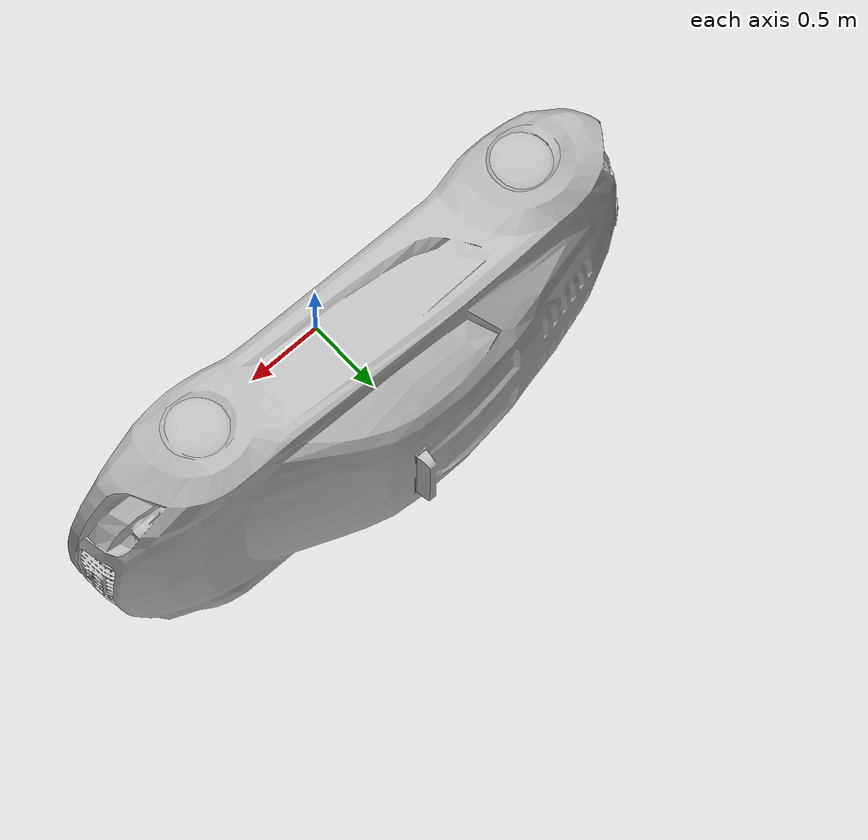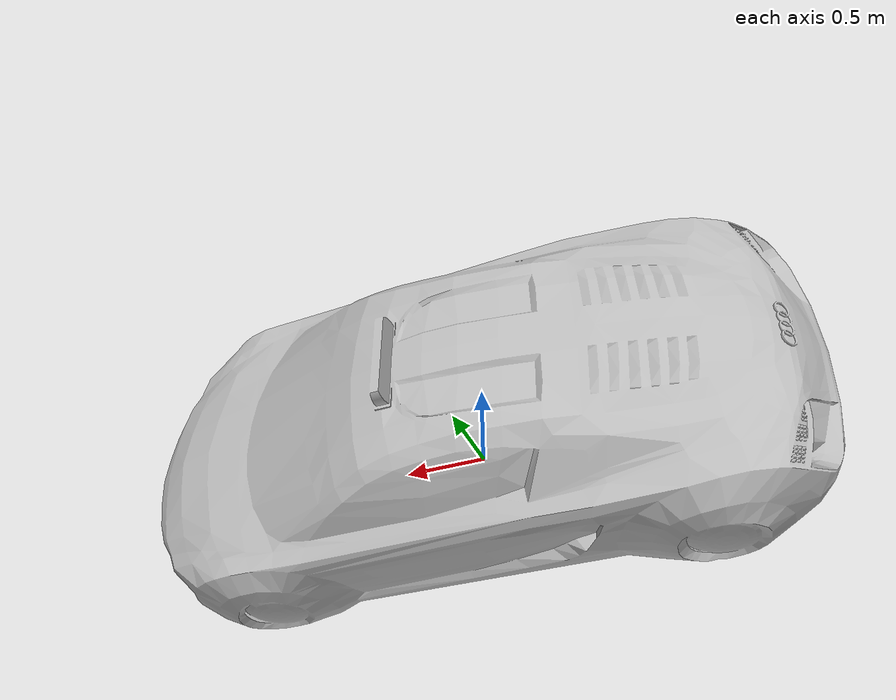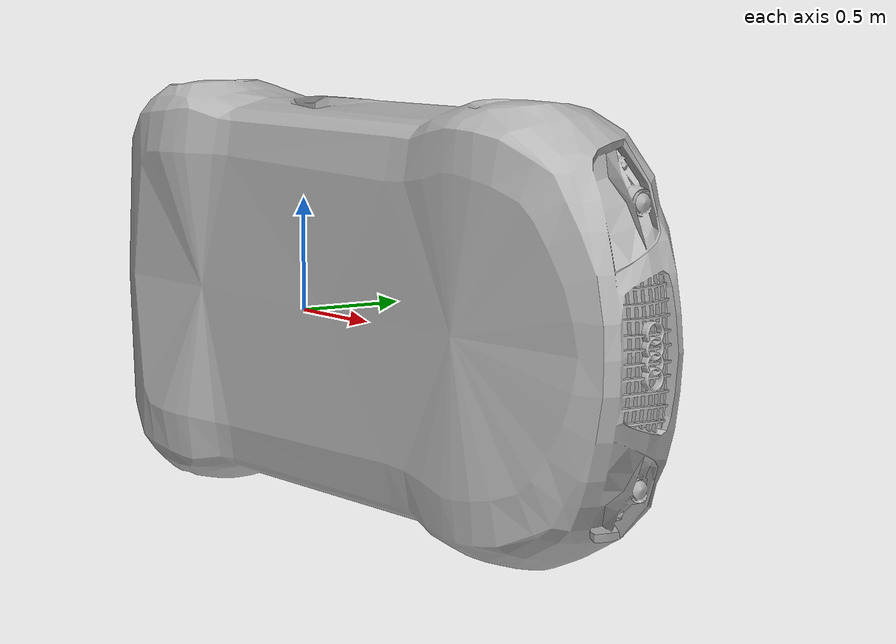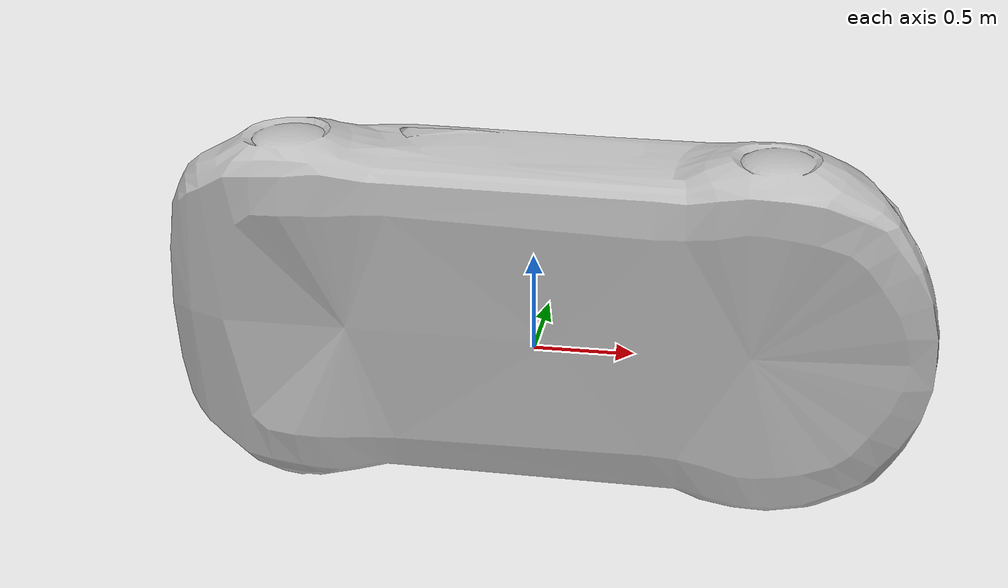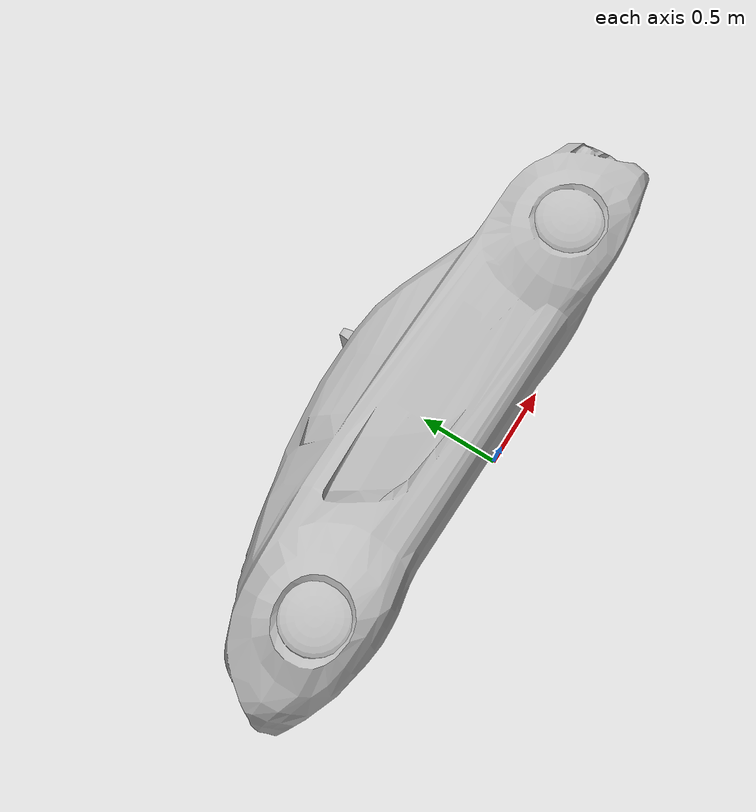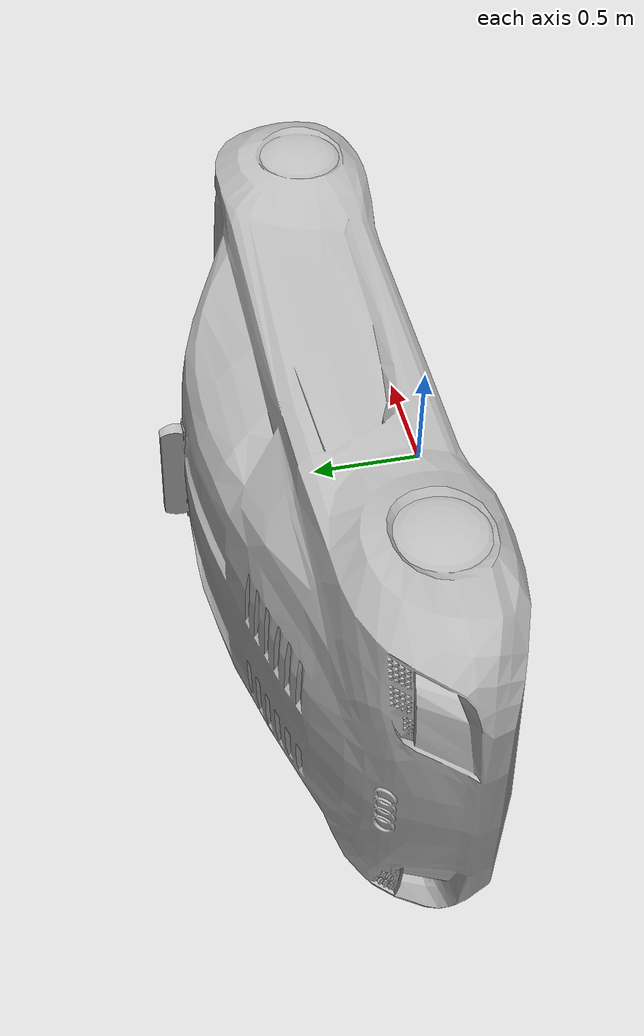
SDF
<?xml version='1.0'?>
<sdf version="1.5">
<model name="taxi_holo">
  <pose>0 0 0 0 0 0</pose>
  <static>false</static>
    <link name="taxi_holo">
      <gravity>false</gravity>
      <inertial>
        <mass>750.0</mass>
        <inertia>
          <ixx>1</ixx>
          <ixy>0.0</ixy>
          <ixz>0.0</ixz>
          <iyy>1</iyy>
          <iyz>0.0</iyz>
          <izz>1</izz>
        </inertia>
      </inertial>
      <collision name="collision">
        <geometry>
	  <mesh>
	    <uri>model://taxi_holo_ROS/meshes/taxi_holo.dae</uri>
	  </mesh>
        </geometry>
      </collision>
      <visual name="visual">
        <geometry>
          <mesh>
            <uri>model://taxi_holo_ROS/meshes/taxi_holo.dae</uri>
          </mesh>
        </geometry>
      </visual>
    </link>
    <plugin name="object_controller" filename="libgazebo_ros_planar_move.so">
      <commandTopic>taxi_holo/cmd_vel</commandTopic>
      <odometryTopic>taxi_holo/odom</odometryTopic>
      <odometryFrame>odom</odometryFrame>
      <odometryRate>20.0</odometryRate>
      <robotBaseFrame>taxi_holo</robotBaseFrame>
</plugin>
  </model>
</sdf>
